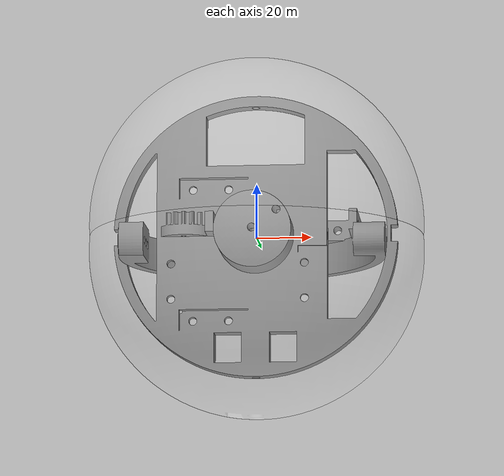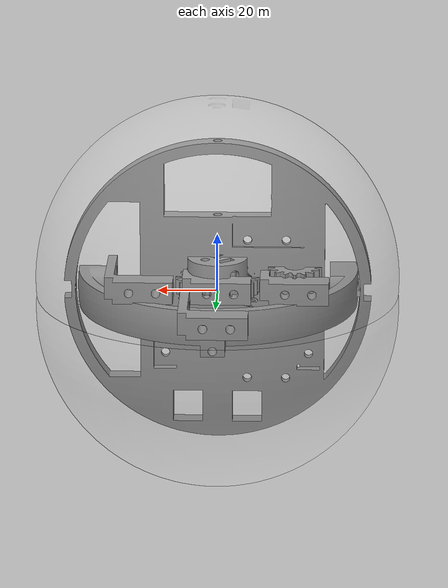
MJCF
<mujoco model="FabConvert.com_back_ring_holder">
  <default>
    <default class="visual">
      <geom group="2" type="mesh" contype="0" conaffinity="0"/>
    </default>
    <default class="collision">
      <geom group="3" type="mesh"/>
    </default>
  </default>
  <asset>
    <mesh file="FabConvert.com_servo_gear_x2.obj"/>
    <mesh file="FabConvert.com_servo_brackets_x4.obj"/>
    <mesh file="FabConvert.com_middle_wall_mount.obj"/>
    <mesh file="FabConvert.com_gear_2.obj"/>
    <mesh file="FabConvert.com_gear_1.obj"/>
    <mesh file="FabConvert.com_back_ring_holder.obj"/>
    <mesh file="FabConvert.com_back_cover_sphere.obj"/>
  </asset>
  <worldbody>
    <body name="FabConvert.com_servo_gear_x2">
      <geom mesh="FabConvert.com_servo_gear_x2" class="visual"/>
      <geom mesh="FabConvert.com_servo_gear_x2" class="collision"/>
    </body>
    <body name="FabConvert.com_servo_brackets_x4">
      <geom mesh="FabConvert.com_servo_brackets_x4" class="visual"/>
      <geom mesh="FabConvert.com_servo_brackets_x4" class="collision"/>
    </body>
    <body name="FabConvert.com_middle_wall_mount">
      <geom mesh="FabConvert.com_middle_wall_mount" class="visual" axisangle="1 0 0 90" />
      <geom mesh="FabConvert.com_middle_wall_mount" class="collision" axisangle="1 0 0 90" />
    </body>
    <body name="FabConvert.com_gear_2">
      <geom mesh="FabConvert.com_gear_2" class="visual" axisangle="1 0 0 90" />
      <geom mesh="FabConvert.com_gear_2" class="collision" axisangle="1 0 0 90"/>
    </body>
    <body name="FabConvert.com_gear_1">
      <geom mesh="FabConvert.com_gear_1" class="visual"/>
      <geom mesh="FabConvert.com_gear_1" class="collision"/>
    </body>
    <body name="FabConvert.com_back_ring_holder" >
      <geom mesh="FabConvert.com_back_ring_holder" class="visual" axisangle="1 1 0 180" pos="0.5 0.5 0.5"/>
      <geom mesh="FabConvert.com_back_ring_holder" class="collision" axisangle="1 1 0 180" pos="0.5 0.5 0.5"/>
    </body>
    <body name="FabConvert.com_back_cover_sphere">
      <geom mesh="FabConvert.com_back_cover_sphere" class="visual" rgba="1 1 1 0.1"/>
      <geom mesh="FabConvert.com_back_cover_sphere" class="collision"/>
    </body>
<body name="FabConvert.com_back_cover_sphere2">
      <geom mesh="FabConvert.com_back_cover_sphere" class="visual" rgba="1 1 1 0.1" axisangle="1 0 0 180" />
      <geom mesh="FabConvert.com_back_cover_sphere" class="collision" axisangle="1 0 0 180"/>
    </body>
      </worldbody>
</mujoco>
